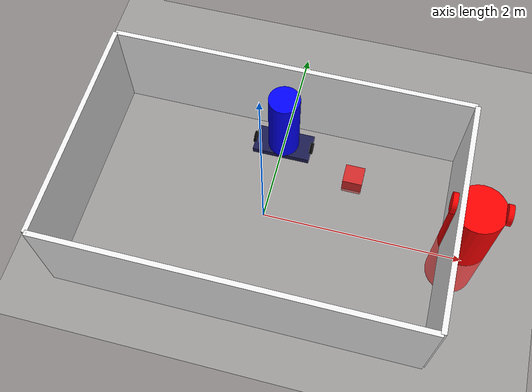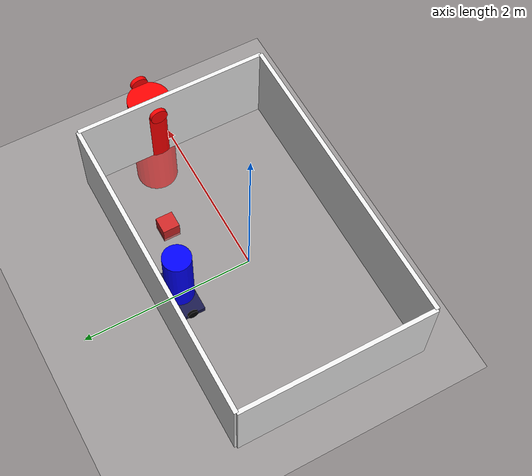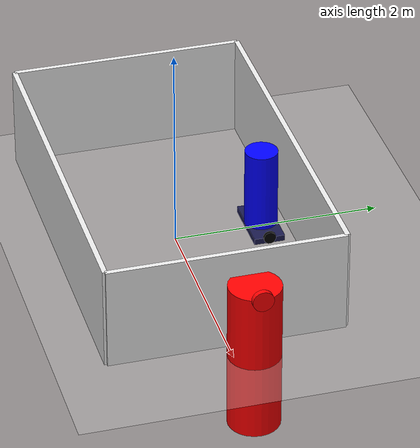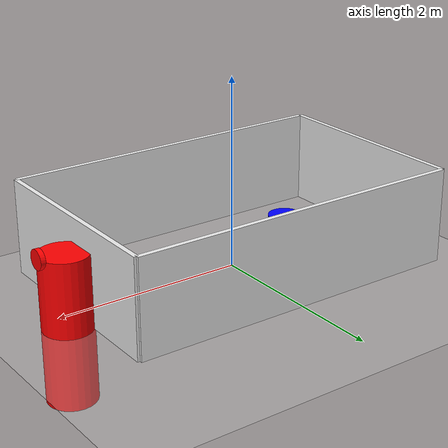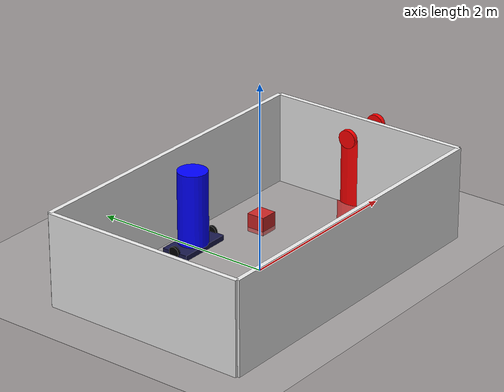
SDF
<sdf version="1.7">
 <world name="new_simple_room">
  <light name="sun" type="directional">
   <pose>0 0 10 0 0 0</pose>
   <diffuse>0.8 0.8 0.8 1</diffuse>
   <specular>0.2 0.2 0.2 1</specular>
   <attenuation>
    <range>1000</range>
    <constant>0.9</constant>
    <linear>0.01</linear>
    <quadratic>0.001</quadratic>
   </attenuation>
   <direction>-0.5 0.1 -0.9</direction>
  </light>
  <model name="ground_plane">
   <static>true</static>
   <link name="link">
    <collision name="collision">
     <geometry><plane><normal>0 0 1</normal><size>3.6 2.25</size></plane></geometry>
     <surface><friction><ode><mu>100</mu><mu2>50</mu2></ode></friction></surface>
    </collision>
    <visual name="visual">
     <cast_shadows>false</cast_shadows>
     <geometry><plane><normal>0 0 1</normal><size>10 10</size></plane></geometry>
     <material>
      <script><uri>file://media/materials/scripts/gazebo.material</uri><name>Gazebo/Grey</name></script>
     </material>
    </visual>
   </link>
  </model>
  <model name="north_wall">
   <static>true</static>
   <pose>0 1.125 0.5 0 0 0</pose>
   <link name="link">
    <collision name="collision"><geometry><box><size>3.6 0.05 1</size></box></geometry></collision>
    <visual name="visual">
     <geometry><box><size>3.6 0.05 1</size></box></geometry>
     <material><script><name>Gazebo/White</name></script></material>
    </visual>
   </link>
  </model>
  <model name="south_wall">
   <static>true</static>
   <pose>0 -1.125 0.5 0 0 0</pose>
   <link name="link">
    <collision name="collision"><geometry><box><size>3.6 0.05 1</size></box></geometry></collision>
    <visual name="visual">
     <geometry><box><size>3.6 0.05 1</size></box></geometry>
     <material><script><name>Gazebo/White</name></script></material>
    </visual>
   </link>
  </model>
  <model name="east_wall">
   <static>true</static>
   <pose>1.8 0 0.5 0 0 1.57</pose>
   <link name="link">
    <collision name="collision"><geometry><box><size>2.25 0.05 1</size></box></geometry></collision>
    <visual name="visual">
     <geometry><box><size>2.25 0.05 1</size></box></geometry>
     <material><script><name>Gazebo/White</name></script></material>
    </visual>
   </link>
  </model>
  <model name="west_wall">
   <static>true</static>
   <pose>-1.8 0 0.5 0 0 1.57</pose>
   <link name="link">
    <collision name="collision"><geometry><box><size>2.25 0.05 1</size></box></geometry></collision>
    <visual name="visual">
     <geometry><box><size>2.25 0.05 1</size></box></geometry>
     <material><script><name>Gazebo/White</name></script></material>
    </visual>
   </link>
  </model>
  <model name="toy">
   <static>true</static>
   <pose>0.8 0.6 0.05 0 0 0</pose>
   <link name="link">
    <collision name="collision"><geometry><box><size>0.2 0.2 0.2</size></box></geometry></collision>
    <visual name="visual">
     <geometry><box><size>0.2 0.2 0.2</size></box></geometry>
     <material><script><name>Gazebo/Red</name></script></material>
    </visual>
   </link>
  </model>
  <model name="human_owner">
   <pose>0 0.85 0 0 0 0</pose>
   <static>false</static>
   <link name="body">
    <pose>0 0 0.45 0 0 0</pose>
    <inertial><mass>12.0</mass><inertia><ixx>0.45</ixx><iyy>0.45</iyy><izz>0.10</izz></inertia></inertial>
    <collision name="body_collision">
     <geometry><cylinder><radius>0.16</radius><length>0.80</length></cylinder></geometry>
    </collision>
    <visual name="body_visual">
     <geometry><cylinder><radius>0.16</radius><length>0.80</length></cylinder></geometry>
     <material><ambient>0 0 1 1</ambient></material>
    </visual>
   </link>
   <link name="base_plate">
    <pose>0 0 0.03 0 0 0</pose>
    <inertial><mass>4.0</mass><inertia><ixx>0.02</ixx><iyy>0.02</iyy><izz>0.01</izz></inertia></inertial>
    <collision name="base_plate_collision">
     <geometry><box><size>0.60 0.30 0.06</size></box></geometry>
     <surface><friction><ode><mu>5.0</mu><mu2>3.0</mu2></ode></friction></surface>
    </collision>
    <visual name="base_plate_visual">
     <geometry><box><size>0.60 0.30 0.06</size></box></geometry>
     <material><ambient>0.1 0.1 0.3 1</ambient></material>
    </visual>
   </link>
   <joint name="body_to_base_fixed" type="fixed">
    <parent>body</parent>
    <child>base_plate</child>
    <pose>0 0 -0.42 0 0 0</pose>
   </joint>
   <link name="left_wheel">
    <pose>-0.30 0 0.06 0 1.5708 0</pose>
    <inertial><mass>0.5</mass><inertia><ixx>0.0005</ixx><iyy>0.0005</iyy><izz>0.001</izz></inertia></inertial>
    <collision name="left_wheel_collision">
     <geometry><cylinder><radius>0.06</radius><length>0.03</length></cylinder></geometry>
     <surface>
      <friction><ode><mu>1.5</mu><mu2>1.0</mu2></ode></friction>
      <contact><ode><soft_cfm>0.0001</soft_cfm><soft_erp>0.9</soft_erp></ode></contact>
     </surface>
    </collision>
    <visual name="left_wheel_visual">
     <geometry><cylinder><radius>0.06</radius><length>0.03</length></cylinder></geometry>
     <material><ambient>0 0 0 1</ambient></material>
    </visual>
   </link>
   <link name="right_wheel">
    <pose>0.30 0 0.06 0 1.5708 0</pose>
    <inertial><mass>0.5</mass><inertia><ixx>0.0005</ixx><iyy>0.0005</iyy><izz>0.001</izz></inertia></inertial>
    <collision name="right_wheel_collision">
     <geometry><cylinder><radius>0.06</radius><length>0.03</length></cylinder></geometry>
     <surface>
      <friction><ode><mu>1.5</mu><mu2>1.0</mu2></ode></friction>
      <contact><ode><soft_cfm>0.0001</soft_cfm><soft_erp>0.9</soft_erp></ode></contact>
     </surface>
    </collision>
    <visual name="right_wheel_visual">
     <geometry><cylinder><radius>0.06</radius><length>0.03</length></cylinder></geometry>
     <material><ambient>0 0 0 1</ambient></material>
    </visual>
   </link>
   <joint name="body_left_wheel_joint" type="revolute">
    <parent>body</parent>
    <child>left_wheel</child>
    <pose>-0.30 0 0.06 0 0 0</pose>
    <axis><xyz>1 0 0</xyz><dynamics><damping>5.0</damping><friction>0.1</friction></dynamics></axis>
   </joint>
   <joint name="body_right_wheel_joint" type="revolute">
    <parent>body</parent>
    <child>right_wheel</child>
    <pose>0.30 0 0.06 0 0 0</pose>
    <axis><xyz>1 0 0</xyz><dynamics><damping>5.0</damping><friction>0.1</friction></dynamics></axis>
   </joint>
   <plugin name="diff_drive_human_owner" filename="libgazebo_ros_diff_drive.so">
    <ros><namespace>/human_owner</namespace></ros>
    <wheel_separation>0.60</wheel_separation>
    <wheel_diameter>0.12</wheel_diameter>
    <left_joint>body_left_wheel_joint</left_joint>
    <right_joint>body_right_wheel_joint</right_joint>
    <publish_tf>true</publish_tf>
    <publish_wheel_tf>false</publish_wheel_tf>
    <update_rate>50</update_rate>
   </plugin>
  </model>
  <model name="human_stranger">
   <pose>2 0.2 0 0 0 0</pose>
   <static>false</static>
   <link name="body">
    <visual name="body_visual">
     <geometry><cylinder><radius>0.25</radius><length>1.5</length></cylinder></geometry>
     <material><ambient>1 0 0 1</ambient></material>
    </visual>
    <collision name="body_collision">
     <geometry><cylinder><radius>0.25</radius><length>1.5</length></cylinder></geometry>
    </collision>
   </link>
   <link name="left_wheel">
    <pose>-0.25 0 0.75 0 1.57 0</pose>
    <visual name="left_wheel_visual">
     <geometry><cylinder><radius>0.1</radius><length>0.05</length></cylinder></geometry>
     <material><ambient>1 0 0 1</ambient></material>
    </visual>
    <collision name="left_wheel_collision">
     <geometry><cylinder><radius>0.1</radius><length>0.05</length></cylinder></geometry>
    </collision>
   </link>
   <link name="right_wheel">
    <pose>0.25 0 0.75 0 1.57 0</pose>
    <visual name="right_wheel_visual">
     <geometry><cylinder><radius>0.1</radius><length>0.05</length></cylinder></geometry>
     <material><ambient>1 0 0 1</ambient></material>
    </visual>
    <collision name="right_wheel_collision">
     <geometry><cylinder><radius>0.1</radius><length>0.05</length></cylinder></geometry>
    </collision>
   </link>
   <joint name="body_left_wheel_joint" type="revolute">
    <parent>body</parent>
    <child>left_wheel</child>
    <axis><xyz>0 0 1</xyz></axis>
   </joint>
   <joint name="body_right_wheel_joint" type="revolute">
    <parent>body</parent>
    <child>right_wheel</child>
    <axis><xyz>0 0 1</xyz></axis>
   </joint>
   <plugin name="diff_drive_human_stranger" filename="libgazebo_ros_diff_drive.so">
    <ros><namespace>/human_stranger</namespace><argument>~/cmd_vel:=cmd_vel</argument></ros>
    <wheel_separation>0.5</wheel_separation>
    <wheel_diameter>0.2</wheel_diameter>
    <left_joint>body_left_wheel_joint</left_joint>
    <right_joint>body_right_wheel_joint</right_joint>
    <publish_tf>true</publish_tf>
    <publish_wheel_tf>false</publish_wheel_tf>
    <update_rate>20</update_rate>
   </plugin>
  </model>
  <physics type="ode"><gravity>0 0 -9.8</gravity><real_time_update_rate>1000.0</real_time_update_rate></physics>
 </world>
</sdf>
